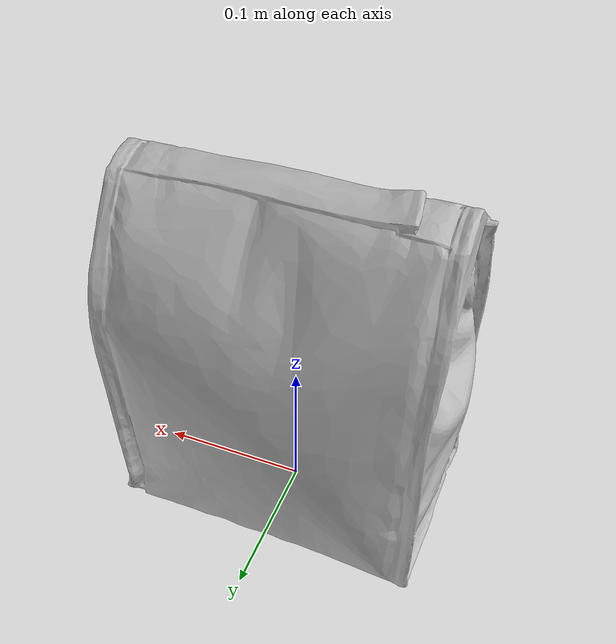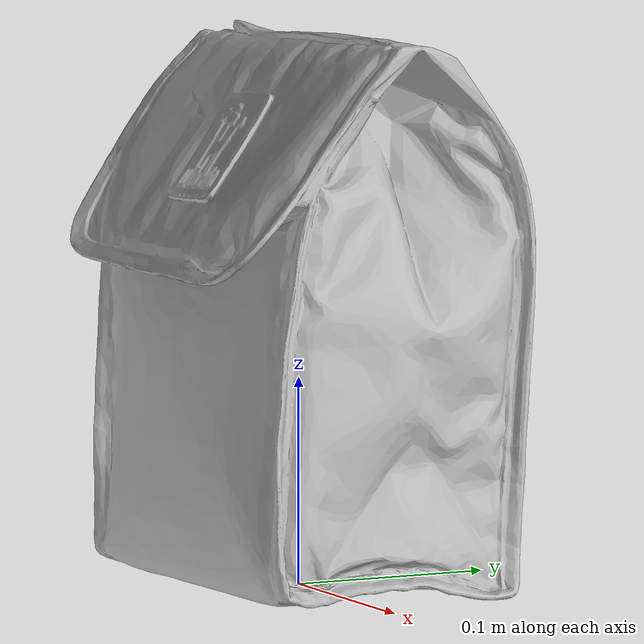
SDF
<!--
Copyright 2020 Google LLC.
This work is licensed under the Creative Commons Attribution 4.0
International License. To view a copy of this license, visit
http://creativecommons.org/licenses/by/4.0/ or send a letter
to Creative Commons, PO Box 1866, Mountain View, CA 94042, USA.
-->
<?xml version="1.0" ?>
<sdf version="1.6">
  <model name="Olive_Kids_Birdie_Munch_n_Lunch">
    <link name="link_0">
      <visual name="visual">
        <geometry>
          <mesh>
            <uri>meshes/model.obj</uri>
          </mesh>
        </geometry>
      </visual>
      <collision name="collision_0">
        <geometry>
          <mesh>
            <uri>meshes/model.obj</uri>
          </mesh>
        </geometry>
      </collision>
    </link>
  </model>
</sdf>
